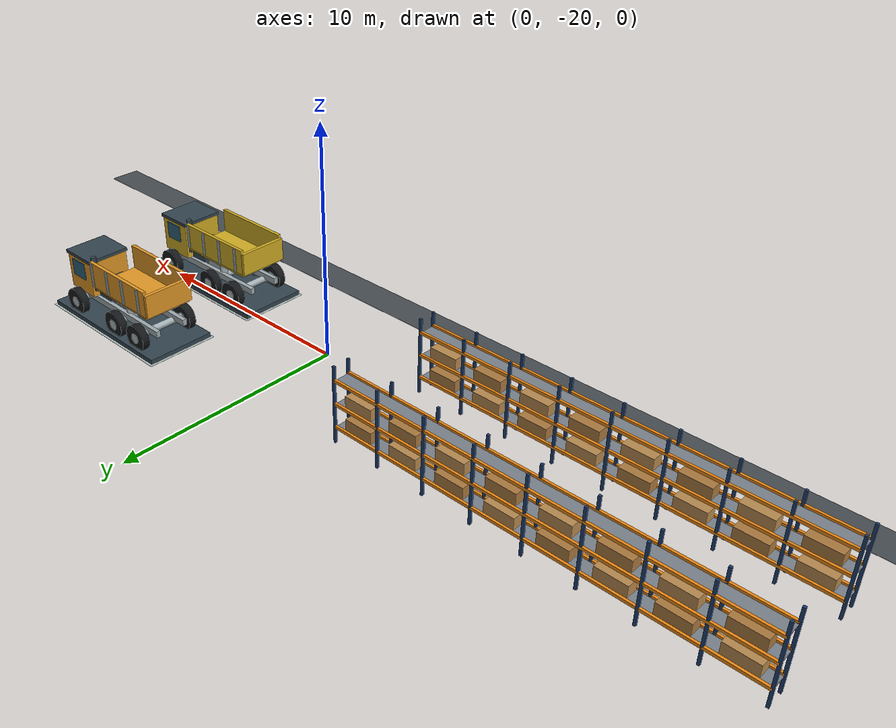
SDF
<sdf version="1.7">
 <world name="warehouse_layout_demo">
  <include><uri>model://sun</uri></include>
  <model name="south_perimeter_path">
   <static>true</static>
   <pose>0.0 -24.8 0.025 0 0 0</pose>
   <link name="marking">
    <visual name="visual">
     <geometry><box><size>90.0 1.5 0.012</size></box></geometry>
     <material><ambient>0.28 0.30 0.32 1</ambient><diffuse>0.28 0.30 0.32 1</diffuse></material>
    </visual>
   </link>
  </model>
  <model name="storage_rack_east_3_sw">
   <static>true</static>
   <pose>-13.0 -16.5 0 0 0 0</pose>
   <link name="rack">
    <collision name="rack_footprint">
     <pose>0 0 1.65 0 0 0</pose>
     <geometry><box><size>17.0 0.7 3.3</size></box></geometry>
    </collision>
    <visual name="upright_0_0">
     <pose>-8.5 -0.35 1.65 0 0 0</pose>
     <geometry><box><size>0.10 0.10 3.3</size></box></geometry>
     <material><ambient>0.12 0.24 0.42 1</ambient><diffuse>0.12 0.24 0.42 1</diffuse></material>
    </visual>
    <visual name="upright_0_1">
     <pose>-8.5 0.35 1.65 0 0 0</pose>
     <geometry><box><size>0.10 0.10 3.3</size></box></geometry>
     <material><ambient>0.12 0.24 0.42 1</ambient><diffuse>0.12 0.24 0.42 1</diffuse></material>
    </visual>
    <visual name="upright_1_0">
     <pose>-6.375 -0.35 1.65 0 0 0</pose>
     <geometry><box><size>0.10 0.10 3.3</size></box></geometry>
     <material><ambient>0.12 0.24 0.42 1</ambient><diffuse>0.12 0.24 0.42 1</diffuse></material>
    </visual>
    <visual name="upright_1_1">
     <pose>-6.375 0.35 1.65 0 0 0</pose>
     <geometry><box><size>0.10 0.10 3.3</size></box></geometry>
     <material><ambient>0.12 0.24 0.42 1</ambient><diffuse>0.12 0.24 0.42 1</diffuse></material>
    </visual>
    <visual name="upright_2_0">
     <pose>-4.25 -0.35 1.65 0 0 0</pose>
     <geometry><box><size>0.10 0.10 3.3</size></box></geometry>
     <material><ambient>0.12 0.24 0.42 1</ambient><diffuse>0.12 0.24 0.42 1</diffuse></material>
    </visual>
    <visual name="upright_2_1">
     <pose>-4.25 0.35 1.65 0 0 0</pose>
     <geometry><box><size>0.10 0.10 3.3</size></box></geometry>
     <material><ambient>0.12 0.24 0.42 1</ambient><diffuse>0.12 0.24 0.42 1</diffuse></material>
    </visual>
    <visual name="upright_3_0">
     <pose>-2.125 -0.35 1.65 0 0 0</pose>
     <geometry><box><size>0.10 0.10 3.3</size></box></geometry>
     <material><ambient>0.12 0.24 0.42 1</ambient><diffuse>0.12 0.24 0.42 1</diffuse></material>
    </visual>
    <visual name="upright_3_1">
     <pose>-2.125 0.35 1.65 0 0 0</pose>
     <geometry><box><size>0.10 0.10 3.3</size></box></geometry>
     <material><ambient>0.12 0.24 0.42 1</ambient><diffuse>0.12 0.24 0.42 1</diffuse></material>
    </visual>
    <visual name="upright_4_0">
     <pose>0.0 -0.35 1.65 0 0 0</pose>
     <geometry><box><size>0.10 0.10 3.3</size></box></geometry>
     <material><ambient>0.12 0.24 0.42 1</ambient><diffuse>0.12 0.24 0.42 1</diffuse></material>
    </visual>
    <visual name="upright_4_1">
     <pose>0.0 0.35 1.65 0 0 0</pose>
     <geometry><box><size>0.10 0.10 3.3</size></box></geometry>
     <material><ambient>0.12 0.24 0.42 1</ambient><diffuse>0.12 0.24 0.42 1</diffuse></material>
    </visual>
    <visual name="upright_5_0">
     <pose>2.125 -0.35 1.65 0 0 0</pose>
     <geometry><box><size>0.10 0.10 3.3</size></box></geometry>
     <material><ambient>0.12 0.24 0.42 1</ambient><diffuse>0.12 0.24 0.42 1</diffuse></material>
    </visual>
    <visual name="upright_5_1">
     <pose>2.125 0.35 1.65 0 0 0</pose>
     <geometry><box><size>0.10 0.10 3.3</size></box></geometry>
     <material><ambient>0.12 0.24 0.42 1</ambient><diffuse>0.12 0.24 0.42 1</diffuse></material>
    </visual>
    <visual name="upright_6_0">
     <pose>4.25 -0.35 1.65 0 0 0</pose>
     <geometry><box><size>0.10 0.10 3.3</size></box></geometry>
     <material><ambient>0.12 0.24 0.42 1</ambient><diffuse>0.12 0.24 0.42 1</diffuse></material>
    </visual>
    <visual name="upright_6_1">
     <pose>4.25 0.35 1.65 0 0 0</pose>
     <geometry><box><size>0.10 0.10 3.3</size></box></geometry>
     <material><ambient>0.12 0.24 0.42 1</ambient><diffuse>0.12 0.24 0.42 1</diffuse></material>
    </visual>
    <visual name="upright_7_0">
     <pose>6.375 -0.35 1.65 0 0 0</pose>
     <geometry><box><size>0.10 0.10 3.3</size></box></geometry>
     <material><ambient>0.12 0.24 0.42 1</ambient><diffuse>0.12 0.24 0.42 1</diffuse></material>
    </visual>
    <visual name="upright_7_1">
     <pose>6.375 0.35 1.65 0 0 0</pose>
     <geometry><box><size>0.10 0.10 3.3</size></box></geometry>
     <material><ambient>0.12 0.24 0.42 1</ambient><diffuse>0.12 0.24 0.42 1</diffuse></material>
    </visual>
    <visual name="upright_8_0">
     <pose>8.5 -0.35 1.65 0 0 0</pose>
     <geometry><box><size>0.10 0.10 3.3</size></box></geometry>
     <material><ambient>0.12 0.24 0.42 1</ambient><diffuse>0.12 0.24 0.42 1</diffuse></material>
    </visual>
    <visual name="upright_8_1">
     <pose>8.5 0.35 1.65 0 0 0</pose>
     <geometry><box><size>0.10 0.10 3.3</size></box></geometry>
     <material><ambient>0.12 0.24 0.42 1</ambient><diffuse>0.12 0.24 0.42 1</diffuse></material>
    </visual>
    <visual name="deck_0">
     <pose>0 0 0.65 0 0 0</pose>
     <geometry><box><size>17.0 0.7 0.06</size></box></geometry>
     <material><ambient>0.48 0.51 0.55 1</ambient><diffuse>0.48 0.51 0.55 1</diffuse></material>
    </visual>
    <visual name="beam_0_0">
     <pose>0 -0.35 0.71 0 0 0</pose>
     <geometry><box><size>17.0 0.10 0.12</size></box></geometry>
     <material><ambient>0.95 0.55 0.08 1</ambient><diffuse>0.95 0.55 0.08 1</diffuse></material>
    </visual>
    <visual name="beam_0_1">
     <pose>0 0.35 0.71 0 0 0</pose>
     <geometry><box><size>17.0 0.10 0.12</size></box></geometry>
     <material><ambient>0.95 0.55 0.08 1</ambient><diffuse>0.95 0.55 0.08 1</diffuse></material>
    </visual>
    <visual name="deck_1">
     <pose>0 0 1.65 0 0 0</pose>
     <geometry><box><size>17.0 0.7 0.06</size></box></geometry>
     <material><ambient>0.48 0.51 0.55 1</ambient><diffuse>0.48 0.51 0.55 1</diffuse></material>
    </visual>
    <visual name="beam_1_0">
     <pose>0 -0.35 1.71 0 0 0</pose>
     <geometry><box><size>17.0 0.10 0.12</size></box></geometry>
     <material><ambient>0.95 0.55 0.08 1</ambient><diffuse>0.95 0.55 0.08 1</diffuse></material>
    </visual>
    <visual name="beam_1_1">
     <pose>0 0.35 1.71 0 0 0</pose>
     <geometry><box><size>17.0 0.10 0.12</size></box></geometry>
     <material><ambient>0.95 0.55 0.08 1</ambient><diffuse>0.95 0.55 0.08 1</diffuse></material>
    </visual>
    <visual name="deck_2">
     <pose>0 0 2.65 0 0 0</pose>
     <geometry><box><size>17.0 0.7 0.06</size></box></geometry>
     <material><ambient>0.48 0.51 0.55 1</ambient><diffuse>0.48 0.51 0.55 1</diffuse></material>
    </visual>
    <visual name="beam_2_0">
     <pose>0 -0.35 2.71 0 0 0</pose>
     <geometry><box><size>17.0 0.10 0.12</size></box></geometry>
     <material><ambient>0.95 0.55 0.08 1</ambient><diffuse>0.95 0.55 0.08 1</diffuse></material>
    </visual>
    <visual name="beam_2_1">
     <pose>0 0.35 2.71 0 0 0</pose>
     <geometry><box><size>17.0 0.10 0.12</size></box></geometry>
     <material><ambient>0.95 0.55 0.08 1</ambient><diffuse>0.95 0.55 0.08 1</diffuse></material>
    </visual>
    <visual name="load_0_0">
     <pose>-7.4375 0 0.95 0 0 0</pose>
     <geometry><box><size>1.25 0.504 0.48</size></box></geometry>
     <material><ambient>0.72 0.54 0.31 1</ambient><diffuse>0.72 0.54 0.31 1</diffuse></material>
    </visual>
    <visual name="load_0_1">
     <pose>-7.4375 0 1.95 0 0 0</pose>
     <geometry><box><size>1.25 0.504 0.48</size></box></geometry>
     <material><ambient>0.67 0.48 0.25 1</ambient><diffuse>0.67 0.48 0.25 1</diffuse></material>
    </visual>
    <visual name="load_1_0">
     <pose>-5.3125 0 0.95 0 0 0</pose>
     <geometry><box><size>1.25 0.504 0.48</size></box></geometry>
     <material><ambient>0.67 0.48 0.25 1</ambient><diffuse>0.67 0.48 0.25 1</diffuse></material>
    </visual>
    <visual name="load_1_1">
     <pose>-5.3125 0 1.95 0 0 0</pose>
     <geometry><box><size>1.25 0.504 0.48</size></box></geometry>
     <material><ambient>0.72 0.54 0.31 1</ambient><diffuse>0.72 0.54 0.31 1</diffuse></material>
    </visual>
    <visual name="load_2_0">
     <pose>-3.1875 0 0.95 0 0 0</pose>
     <geometry><box><size>1.25 0.504 0.48</size></box></geometry>
     <material><ambient>0.72 0.54 0.31 1</ambient><diffuse>0.72 0.54 0.31 1</diffuse></material>
    </visual>
    <visual name="load_2_1">
     <pose>-3.1875 0 1.95 0 0 0</pose>
     <geometry><box><size>1.25 0.504 0.48</size></box></geometry>
     <material><ambient>0.67 0.48 0.25 1</ambient><diffuse>0.67 0.48 0.25 1</diffuse></material>
    </visual>
    <visual name="load_3_0">
     <pose>-1.0625 0 0.95 0 0 0</pose>
     <geometry><box><size>1.25 0.504 0.48</size></box></geometry>
     <material><ambient>0.67 0.48 0.25 1</ambient><diffuse>0.67 0.48 0.25 1</diffuse></material>
    </visual>
    <visual name="load_3_1">
     <pose>-1.0625 0 1.95 0 0 0</pose>
     <geometry><box><size>1.25 0.504 0.48</size></box></geometry>
     <material><ambient>0.72 0.54 0.31 1</ambient><diffuse>0.72 0.54 0.31 1</diffuse></material>
    </visual>
    <visual name="load_4_0">
     <pose>1.0625 0 0.95 0 0 0</pose>
     <geometry><box><size>1.25 0.504 0.48</size></box></geometry>
     <material><ambient>0.72 0.54 0.31 1</ambient><diffuse>0.72 0.54 0.31 1</diffuse></material>
    </visual>
    <visual name="load_4_1">
     <pose>1.0625 0 1.95 0 0 0</pose>
     <geometry><box><size>1.25 0.504 0.48</size></box></geometry>
     <material><ambient>0.67 0.48 0.25 1</ambient><diffuse>0.67 0.48 0.25 1</diffuse></material>
    </visual>
    <visual name="load_5_0">
     <pose>3.1875 0 0.95 0 0 0</pose>
     <geometry><box><size>1.25 0.504 0.48</size></box></geometry>
     <material><ambient>0.67 0.48 0.25 1</ambient><diffuse>0.67 0.48 0.25 1</diffuse></material>
    </visual>
    <visual name="load_5_1">
     <pose>3.1875 0 1.95 0 0 0</pose>
     <geometry><box><size>1.25 0.504 0.48</size></box></geometry>
     <material><ambient>0.72 0.54 0.31 1</ambient><diffuse>0.72 0.54 0.31 1</diffuse></material>
    </visual>
    <visual name="load_6_0">
     <pose>5.3125 0 0.95 0 0 0</pose>
     <geometry><box><size>1.25 0.504 0.48</size></box></geometry>
     <material><ambient>0.72 0.54 0.31 1</ambient><diffuse>0.72 0.54 0.31 1</diffuse></material>
    </visual>
    <visual name="load_6_1">
     <pose>5.3125 0 1.95 0 0 0</pose>
     <geometry><box><size>1.25 0.504 0.48</size></box></geometry>
     <material><ambient>0.67 0.48 0.25 1</ambient><diffuse>0.67 0.48 0.25 1</diffuse></material>
    </visual>
    <visual name="load_7_0">
     <pose>7.4375 0 0.95 0 0 0</pose>
     <geometry><box><size>1.25 0.504 0.48</size></box></geometry>
     <material><ambient>0.67 0.48 0.25 1</ambient><diffuse>0.67 0.48 0.25 1</diffuse></material>
    </visual>
    <visual name="load_7_1">
     <pose>7.4375 0 1.95 0 0 0</pose>
     <geometry><box><size>1.25 0.504 0.48</size></box></geometry>
     <material><ambient>0.72 0.54 0.31 1</ambient><diffuse>0.72 0.54 0.31 1</diffuse></material>
    </visual>
   </link>
  </model>
  <model name="storage_rack_east_4_sw">
   <static>true</static>
   <pose>-13.0 -21.0 0 0 0 0</pose>
   <link name="rack">
    <collision name="rack_footprint">
     <pose>0 0 1.65 0 0 0</pose>
     <geometry><box><size>17.0 0.7 3.3</size></box></geometry>
    </collision>
    <visual name="upright_0_0">
     <pose>-8.5 -0.35 1.65 0 0 0</pose>
     <geometry><box><size>0.10 0.10 3.3</size></box></geometry>
     <material><ambient>0.12 0.24 0.42 1</ambient><diffuse>0.12 0.24 0.42 1</diffuse></material>
    </visual>
    <visual name="upright_0_1">
     <pose>-8.5 0.35 1.65 0 0 0</pose>
     <geometry><box><size>0.10 0.10 3.3</size></box></geometry>
     <material><ambient>0.12 0.24 0.42 1</ambient><diffuse>0.12 0.24 0.42 1</diffuse></material>
    </visual>
    <visual name="upright_1_0">
     <pose>-6.375 -0.35 1.65 0 0 0</pose>
     <geometry><box><size>0.10 0.10 3.3</size></box></geometry>
     <material><ambient>0.12 0.24 0.42 1</ambient><diffuse>0.12 0.24 0.42 1</diffuse></material>
    </visual>
    <visual name="upright_1_1">
     <pose>-6.375 0.35 1.65 0 0 0</pose>
     <geometry><box><size>0.10 0.10 3.3</size></box></geometry>
     <material><ambient>0.12 0.24 0.42 1</ambient><diffuse>0.12 0.24 0.42 1</diffuse></material>
    </visual>
    <visual name="upright_2_0">
     <pose>-4.25 -0.35 1.65 0 0 0</pose>
     <geometry><box><size>0.10 0.10 3.3</size></box></geometry>
     <material><ambient>0.12 0.24 0.42 1</ambient><diffuse>0.12 0.24 0.42 1</diffuse></material>
    </visual>
    <visual name="upright_2_1">
     <pose>-4.25 0.35 1.65 0 0 0</pose>
     <geometry><box><size>0.10 0.10 3.3</size></box></geometry>
     <material><ambient>0.12 0.24 0.42 1</ambient><diffuse>0.12 0.24 0.42 1</diffuse></material>
    </visual>
    <visual name="upright_3_0">
     <pose>-2.125 -0.35 1.65 0 0 0</pose>
     <geometry><box><size>0.10 0.10 3.3</size></box></geometry>
     <material><ambient>0.12 0.24 0.42 1</ambient><diffuse>0.12 0.24 0.42 1</diffuse></material>
    </visual>
    <visual name="upright_3_1">
     <pose>-2.125 0.35 1.65 0 0 0</pose>
     <geometry><box><size>0.10 0.10 3.3</size></box></geometry>
     <material><ambient>0.12 0.24 0.42 1</ambient><diffuse>0.12 0.24 0.42 1</diffuse></material>
    </visual>
    <visual name="upright_4_0">
     <pose>0.0 -0.35 1.65 0 0 0</pose>
     <geometry><box><size>0.10 0.10 3.3</size></box></geometry>
     <material><ambient>0.12 0.24 0.42 1</ambient><diffuse>0.12 0.24 0.42 1</diffuse></material>
    </visual>
    <visual name="upright_4_1">
     <pose>0.0 0.35 1.65 0 0 0</pose>
     <geometry><box><size>0.10 0.10 3.3</size></box></geometry>
     <material><ambient>0.12 0.24 0.42 1</ambient><diffuse>0.12 0.24 0.42 1</diffuse></material>
    </visual>
    <visual name="upright_5_0">
     <pose>2.125 -0.35 1.65 0 0 0</pose>
     <geometry><box><size>0.10 0.10 3.3</size></box></geometry>
     <material><ambient>0.12 0.24 0.42 1</ambient><diffuse>0.12 0.24 0.42 1</diffuse></material>
    </visual>
    <visual name="upright_5_1">
     <pose>2.125 0.35 1.65 0 0 0</pose>
     <geometry><box><size>0.10 0.10 3.3</size></box></geometry>
     <material><ambient>0.12 0.24 0.42 1</ambient><diffuse>0.12 0.24 0.42 1</diffuse></material>
    </visual>
    <visual name="upright_6_0">
     <pose>4.25 -0.35 1.65 0 0 0</pose>
     <geometry><box><size>0.10 0.10 3.3</size></box></geometry>
     <material><ambient>0.12 0.24 0.42 1</ambient><diffuse>0.12 0.24 0.42 1</diffuse></material>
    </visual>
    <visual name="upright_6_1">
     <pose>4.25 0.35 1.65 0 0 0</pose>
     <geometry><box><size>0.10 0.10 3.3</size></box></geometry>
     <material><ambient>0.12 0.24 0.42 1</ambient><diffuse>0.12 0.24 0.42 1</diffuse></material>
    </visual>
    <visual name="upright_7_0">
     <pose>6.375 -0.35 1.65 0 0 0</pose>
     <geometry><box><size>0.10 0.10 3.3</size></box></geometry>
     <material><ambient>0.12 0.24 0.42 1</ambient><diffuse>0.12 0.24 0.42 1</diffuse></material>
    </visual>
    <visual name="upright_7_1">
     <pose>6.375 0.35 1.65 0 0 0</pose>
     <geometry><box><size>0.10 0.10 3.3</size></box></geometry>
     <material><ambient>0.12 0.24 0.42 1</ambient><diffuse>0.12 0.24 0.42 1</diffuse></material>
    </visual>
    <visual name="upright_8_0">
     <pose>8.5 -0.35 1.65 0 0 0</pose>
     <geometry><box><size>0.10 0.10 3.3</size></box></geometry>
     <material><ambient>0.12 0.24 0.42 1</ambient><diffuse>0.12 0.24 0.42 1</diffuse></material>
    </visual>
    <visual name="upright_8_1">
     <pose>8.5 0.35 1.65 0 0 0</pose>
     <geometry><box><size>0.10 0.10 3.3</size></box></geometry>
     <material><ambient>0.12 0.24 0.42 1</ambient><diffuse>0.12 0.24 0.42 1</diffuse></material>
    </visual>
    <visual name="deck_0">
     <pose>0 0 0.65 0 0 0</pose>
     <geometry><box><size>17.0 0.7 0.06</size></box></geometry>
     <material><ambient>0.48 0.51 0.55 1</ambient><diffuse>0.48 0.51 0.55 1</diffuse></material>
    </visual>
    <visual name="beam_0_0">
     <pose>0 -0.35 0.71 0 0 0</pose>
     <geometry><box><size>17.0 0.10 0.12</size></box></geometry>
     <material><ambient>0.95 0.55 0.08 1</ambient><diffuse>0.95 0.55 0.08 1</diffuse></material>
    </visual>
    <visual name="beam_0_1">
     <pose>0 0.35 0.71 0 0 0</pose>
     <geometry><box><size>17.0 0.10 0.12</size></box></geometry>
     <material><ambient>0.95 0.55 0.08 1</ambient><diffuse>0.95 0.55 0.08 1</diffuse></material>
    </visual>
    <visual name="deck_1">
     <pose>0 0 1.65 0 0 0</pose>
     <geometry><box><size>17.0 0.7 0.06</size></box></geometry>
     <material><ambient>0.48 0.51 0.55 1</ambient><diffuse>0.48 0.51 0.55 1</diffuse></material>
    </visual>
    <visual name="beam_1_0">
     <pose>0 -0.35 1.71 0 0 0</pose>
     <geometry><box><size>17.0 0.10 0.12</size></box></geometry>
     <material><ambient>0.95 0.55 0.08 1</ambient><diffuse>0.95 0.55 0.08 1</diffuse></material>
    </visual>
    <visual name="beam_1_1">
     <pose>0 0.35 1.71 0 0 0</pose>
     <geometry><box><size>17.0 0.10 0.12</size></box></geometry>
     <material><ambient>0.95 0.55 0.08 1</ambient><diffuse>0.95 0.55 0.08 1</diffuse></material>
    </visual>
    <visual name="deck_2">
     <pose>0 0 2.65 0 0 0</pose>
     <geometry><box><size>17.0 0.7 0.06</size></box></geometry>
     <material><ambient>0.48 0.51 0.55 1</ambient><diffuse>0.48 0.51 0.55 1</diffuse></material>
    </visual>
    <visual name="beam_2_0">
     <pose>0 -0.35 2.71 0 0 0</pose>
     <geometry><box><size>17.0 0.10 0.12</size></box></geometry>
     <material><ambient>0.95 0.55 0.08 1</ambient><diffuse>0.95 0.55 0.08 1</diffuse></material>
    </visual>
    <visual name="beam_2_1">
     <pose>0 0.35 2.71 0 0 0</pose>
     <geometry><box><size>17.0 0.10 0.12</size></box></geometry>
     <material><ambient>0.95 0.55 0.08 1</ambient><diffuse>0.95 0.55 0.08 1</diffuse></material>
    </visual>
    <visual name="load_0_0">
     <pose>-7.4375 0 0.95 0 0 0</pose>
     <geometry><box><size>1.25 0.504 0.48</size></box></geometry>
     <material><ambient>0.72 0.54 0.31 1</ambient><diffuse>0.72 0.54 0.31 1</diffuse></material>
    </visual>
    <visual name="load_0_1">
     <pose>-7.4375 0 1.95 0 0 0</pose>
     <geometry><box><size>1.25 0.504 0.48</size></box></geometry>
     <material><ambient>0.67 0.48 0.25 1</ambient><diffuse>0.67 0.48 0.25 1</diffuse></material>
    </visual>
    <visual name="load_1_0">
     <pose>-5.3125 0 0.95 0 0 0</pose>
     <geometry><box><size>1.25 0.504 0.48</size></box></geometry>
     <material><ambient>0.67 0.48 0.25 1</ambient><diffuse>0.67 0.48 0.25 1</diffuse></material>
    </visual>
    <visual name="load_1_1">
     <pose>-5.3125 0 1.95 0 0 0</pose>
     <geometry><box><size>1.25 0.504 0.48</size></box></geometry>
     <material><ambient>0.72 0.54 0.31 1</ambient><diffuse>0.72 0.54 0.31 1</diffuse></material>
    </visual>
    <visual name="load_2_0">
     <pose>-3.1875 0 0.95 0 0 0</pose>
     <geometry><box><size>1.25 0.504 0.48</size></box></geometry>
     <material><ambient>0.72 0.54 0.31 1</ambient><diffuse>0.72 0.54 0.31 1</diffuse></material>
    </visual>
    <visual name="load_2_1">
     <pose>-3.1875 0 1.95 0 0 0</pose>
     <geometry><box><size>1.25 0.504 0.48</size></box></geometry>
     <material><ambient>0.67 0.48 0.25 1</ambient><diffuse>0.67 0.48 0.25 1</diffuse></material>
    </visual>
    <visual name="load_3_0">
     <pose>-1.0625 0 0.95 0 0 0</pose>
     <geometry><box><size>1.25 0.504 0.48</size></box></geometry>
     <material><ambient>0.67 0.48 0.25 1</ambient><diffuse>0.67 0.48 0.25 1</diffuse></material>
    </visual>
    <visual name="load_3_1">
     <pose>-1.0625 0 1.95 0 0 0</pose>
     <geometry><box><size>1.25 0.504 0.48</size></box></geometry>
     <material><ambient>0.72 0.54 0.31 1</ambient><diffuse>0.72 0.54 0.31 1</diffuse></material>
    </visual>
    <visual name="load_4_0">
     <pose>1.0625 0 0.95 0 0 0</pose>
     <geometry><box><size>1.25 0.504 0.48</size></box></geometry>
     <material><ambient>0.72 0.54 0.31 1</ambient><diffuse>0.72 0.54 0.31 1</diffuse></material>
    </visual>
    <visual name="load_4_1">
     <pose>1.0625 0 1.95 0 0 0</pose>
     <geometry><box><size>1.25 0.504 0.48</size></box></geometry>
     <material><ambient>0.67 0.48 0.25 1</ambient><diffuse>0.67 0.48 0.25 1</diffuse></material>
    </visual>
    <visual name="load_5_0">
     <pose>3.1875 0 0.95 0 0 0</pose>
     <geometry><box><size>1.25 0.504 0.48</size></box></geometry>
     <material><ambient>0.67 0.48 0.25 1</ambient><diffuse>0.67 0.48 0.25 1</diffuse></material>
    </visual>
    <visual name="load_5_1">
     <pose>3.1875 0 1.95 0 0 0</pose>
     <geometry><box><size>1.25 0.504 0.48</size></box></geometry>
     <material><ambient>0.72 0.54 0.31 1</ambient><diffuse>0.72 0.54 0.31 1</diffuse></material>
    </visual>
    <visual name="load_6_0">
     <pose>5.3125 0 0.95 0 0 0</pose>
     <geometry><box><size>1.25 0.504 0.48</size></box></geometry>
     <material><ambient>0.72 0.54 0.31 1</ambient><diffuse>0.72 0.54 0.31 1</diffuse></material>
    </visual>
    <visual name="load_6_1">
     <pose>5.3125 0 1.95 0 0 0</pose>
     <geometry><box><size>1.25 0.504 0.48</size></box></geometry>
     <material><ambient>0.67 0.48 0.25 1</ambient><diffuse>0.67 0.48 0.25 1</diffuse></material>
    </visual>
    <visual name="load_7_0">
     <pose>7.4375 0 0.95 0 0 0</pose>
     <geometry><box><size>1.25 0.504 0.48</size></box></geometry>
     <material><ambient>0.67 0.48 0.25 1</ambient><diffuse>0.67 0.48 0.25 1</diffuse></material>
    </visual>
    <visual name="load_7_1">
     <pose>7.4375 0 1.95 0 0 0</pose>
     <geometry><box><size>1.25 0.504 0.48</size></box></geometry>
     <material><ambient>0.72 0.54 0.31 1</ambient><diffuse>0.72 0.54 0.31 1</diffuse></material>
    </visual>
   </link>
  </model>
  <model name="vehicle_stage_4_line_1_se_pad">
   <static>true</static>
   <pose>8.0 -21.0 0.012 0 0 0</pose>
   <link name="marking">
    <visual name="visual">
     <geometry><box><size>7.2 3.2 0.012</size></box></geometry>
     <material><ambient>0.72 0.79 0.78 1</ambient><diffuse>0.72 0.79 0.78 1</diffuse></material>
    </visual>
   </link>
  </model>
  <model name="vehicle_stage_4_line_1_se">
   <static>true</static>
   <pose>8.0 -21.0 0 0 0 0</pose>
   <link name="fixture">
    <collision name="collision">
     <pose>0 0 1.9 0 0 0</pose>
     <geometry><box><size>7.0 3.0 3.8</size></box></geometry>
    </collision>
    <visual name="service_platform">
     <pose>0 0 0.11 0 0 0</pose>
     <geometry><box><size>7.0 3.0 0.22</size></box></geometry>
     <material><ambient>0.20 0.27 0.31 1</ambient><diffuse>0.20 0.27 0.31 1</diffuse></material>
    </visual>
    <visual name="chassis_rail_0">
     <pose>0 -0.66 0.85 0 0 0</pose>
     <geometry><box><size>5.9 0.19 0.28</size></box></geometry>
     <material><ambient>0.63 0.68 0.70 1</ambient><diffuse>0.63 0.68 0.70 1</diffuse></material>
    </visual>
    <visual name="haul_tire_0_0">
     <pose>-2.2 -1.18 0.63 1.57079632679 0 0</pose>
     <geometry><cylinder><radius>0.58</radius><length>0.32</length></cylinder></geometry>
     <material><ambient>0.08 0.09 0.10 1</ambient><diffuse>0.08 0.09 0.10 1</diffuse></material>
    </visual>
    <visual name="tire_hub_0_0">
     <pose>-2.2 -1.18 0.63 1.57079632679 0 0</pose>
     <geometry><cylinder><radius>0.23</radius><length>0.34</length></cylinder></geometry>
     <material><ambient>0.70 0.74 0.74 1</ambient><diffuse>0.70 0.74 0.74 1</diffuse></material>
    </visual>
    <visual name="haul_tire_0_1">
     <pose>-0.65 -1.18 0.63 1.57079632679 0 0</pose>
     <geometry><cylinder><radius>0.58</radius><length>0.32</length></cylinder></geometry>
     <material><ambient>0.08 0.09 0.10 1</ambient><diffuse>0.08 0.09 0.10 1</diffuse></material>
    </visual>
    <visual name="tire_hub_0_1">
     <pose>-0.65 -1.18 0.63 1.57079632679 0 0</pose>
     <geometry><cylinder><radius>0.23</radius><length>0.34</length></cylinder></geometry>
     <material><ambient>0.70 0.74 0.74 1</ambient><diffuse>0.70 0.74 0.74 1</diffuse></material>
    </visual>
    <visual name="haul_tire_0_2">
     <pose>2.15 -1.18 0.63 1.57079632679 0 0</pose>
     <geometry><cylinder><radius>0.58</radius><length>0.32</length></cylinder></geometry>
     <material><ambient>0.08 0.09 0.10 1</ambient><diffuse>0.08 0.09 0.10 1</diffuse></material>
    </visual>
    <visual name="tire_hub_0_2">
     <pose>2.15 -1.18 0.63 1.57079632679 0 0</pose>
     <geometry><cylinder><radius>0.23</radius><length>0.34</length></cylinder></geometry>
     <material><ambient>0.70 0.74 0.74 1</ambient><diffuse>0.70 0.74 0.74 1</diffuse></material>
    </visual>
    <visual name="chassis_rail_1">
     <pose>0 0.66 0.85 0 0 0</pose>
     <geometry><box><size>5.9 0.19 0.28</size></box></geometry>
     <material><ambient>0.63 0.68 0.70 1</ambient><diffuse>0.63 0.68 0.70 1</diffuse></material>
    </visual>
    <visual name="haul_tire_1_0">
     <pose>-2.2 1.18 0.63 1.57079632679 0 0</pose>
     <geometry><cylinder><radius>0.58</radius><length>0.32</length></cylinder></geometry>
     <material><ambient>0.08 0.09 0.10 1</ambient><diffuse>0.08 0.09 0.10 1</diffuse></material>
    </visual>
    <visual name="tire_hub_1_0">
     <pose>-2.2 1.18 0.63 1.57079632679 0 0</pose>
     <geometry><cylinder><radius>0.23</radius><length>0.34</length></cylinder></geometry>
     <material><ambient>0.70 0.74 0.74 1</ambient><diffuse>0.70 0.74 0.74 1</diffuse></material>
    </visual>
    <visual name="haul_tire_1_1">
     <pose>-0.65 1.18 0.63 1.57079632679 0 0</pose>
     <geometry><cylinder><radius>0.58</radius><length>0.32</length></cylinder></geometry>
     <material><ambient>0.08 0.09 0.10 1</ambient><diffuse>0.08 0.09 0.10 1</diffuse></material>
    </visual>
    <visual name="tire_hub_1_1">
     <pose>-0.65 1.18 0.63 1.57079632679 0 0</pose>
     <geometry><cylinder><radius>0.23</radius><length>0.34</length></cylinder></geometry>
     <material><ambient>0.70 0.74 0.74 1</ambient><diffuse>0.70 0.74 0.74 1</diffuse></material>
    </visual>
    <visual name="haul_tire_1_2">
     <pose>2.15 1.18 0.63 1.57079632679 0 0</pose>
     <geometry><cylinder><radius>0.58</radius><length>0.32</length></cylinder></geometry>
     <material><ambient>0.08 0.09 0.10 1</ambient><diffuse>0.08 0.09 0.10 1</diffuse></material>
    </visual>
    <visual name="tire_hub_1_2">
     <pose>2.15 1.18 0.63 1.57079632679 0 0</pose>
     <geometry><cylinder><radius>0.23</radius><length>0.34</length></cylinder></geometry>
     <material><ambient>0.70 0.74 0.74 1</ambient><diffuse>0.70 0.74 0.74 1</diffuse></material>
    </visual>
    <visual name="drive_axle_0">
     <pose>-2.2 0 0.68 1.57079632679 0 0</pose>
     <geometry><cylinder><radius>0.15</radius><length>2.38</length></cylinder></geometry>
     <material><ambient>0.63 0.68 0.70 1</ambient><diffuse>0.63 0.68 0.70 1</diffuse></material>
    </visual>
    <visual name="drive_axle_1">
     <pose>-0.65 0 0.68 1.57079632679 0 0</pose>
     <geometry><cylinder><radius>0.15</radius><length>2.38</length></cylinder></geometry>
     <material><ambient>0.63 0.68 0.70 1</ambient><diffuse>0.63 0.68 0.70 1</diffuse></material>
    </visual>
    <visual name="drive_axle_2">
     <pose>2.15 0 0.68 1.57079632679 0 0</pose>
     <geometry><cylinder><radius>0.15</radius><length>2.38</length></cylinder></geometry>
     <material><ambient>0.63 0.68 0.70 1</ambient><diffuse>0.63 0.68 0.70 1</diffuse></material>
    </visual>
    <visual name="diesel_engine">
     <pose>1.15 0 1.26 0 0 0</pose>
     <geometry><box><size>1.38 1.22 0.83</size></box></geometry>
     <material><ambient>0.20 0.27 0.31 1</ambient><diffuse>0.20 0.27 0.31 1</diffuse></material>
    </visual>
    <visual name="gearbox">
     <pose>0.08 0 1.12 0 0 0</pose>
     <geometry><box><size>0.82 0.76 0.6</size></box></geometry>
     <material><ambient>0.63 0.68 0.70 1</ambient><diffuse>0.63 0.68 0.70 1</diffuse></material>
    </visual>
    <visual name="radiator_fan">
     <pose>1.98 0 1.29 1.57079632679 0 0</pose>
     <geometry><cylinder><radius>0.41</radius><length>0.15</length></cylinder></geometry>
     <material><ambient>0.76 0.80 0.79 1</ambient><diffuse>0.76 0.80 0.79 1</diffuse></material>
    </visual>
    <visual name="operator_cab">
     <pose>2.08 0 1.82 0 0 0</pose>
     <geometry><box><size>1.6 1.83 1.62</size></box></geometry>
     <material><ambient>0.82 0.68 0.14 1</ambient><diffuse>0.82 0.68 0.14 1</diffuse></material>
    </visual>
    <visual name="cab_roof">
     <pose>2.08 0 2.66 0 0 0</pose>
     <geometry><box><size>1.72 1.91 0.14</size></box></geometry>
     <material><ambient>0.20 0.27 0.31 1</ambient><diffuse>0.20 0.27 0.31 1</diffuse></material>
    </visual>
    <visual name="windshield">
     <pose>2.91 0 2.03 0 0 0</pose>
     <geometry><box><size>0.045 1.48 0.91</size></box></geometry>
     <material><ambient>0.17 0.38 0.48 1</ambient><diffuse>0.17 0.38 0.48 1</diffuse></material>
    </visual>
    <visual name="exhaust_stack">
     <pose>1.14 0.76 2.15 0.0 0 0</pose>
     <geometry><cylinder><radius>0.12</radius><length>1.57</length></cylinder></geometry>
     <material><ambient>0.20 0.27 0.31 1</ambient><diffuse>0.20 0.27 0.31 1</diffuse></material>
    </visual>
    <visual name="cab_side_glass_0">
     <pose>2.11 -0.95 2.08 0 0 0</pose>
     <geometry><box><size>0.87 0.035 0.76</size></box></geometry>
     <material><ambient>0.17 0.38 0.48 1</ambient><diffuse>0.17 0.38 0.48 1</diffuse></material>
    </visual>
    <visual name="cab_side_glass_1">
     <pose>2.11 0.95 2.08 0 0 0</pose>
     <geometry><box><size>0.87 0.035 0.76</size></box></geometry>
     <material><ambient>0.17 0.38 0.48 1</ambient><diffuse>0.17 0.38 0.48 1</diffuse></material>
    </visual>
    <visual name="dump_bed_floor">
     <pose>-1.01 0 1.78 0 0 0</pose>
     <geometry><box><size>3.75 2.15 0.22</size></box></geometry>
     <material><ambient>0.82 0.68 0.14 1</ambient><diffuse>0.82 0.68 0.14 1</diffuse></material>
    </visual>
    <visual name="dump_bed_side_0">
     <pose>-1.01 -1.05 2.37 0 0 0</pose>
     <geometry><box><size>3.75 0.15 1.15</size></box></geometry>
     <material><ambient>0.82 0.68 0.14 1</ambient><diffuse>0.82 0.68 0.14 1</diffuse></material>
    </visual>
    <visual name="bed_rib_0_0">
     <pose>-2.46 -1.1235000000000002 2.37 0 0 0</pose>
     <geometry><box><size>0.13 0.08 1.1</size></box></geometry>
     <material><ambient>0.63 0.68 0.70 1</ambient><diffuse>0.63 0.68 0.70 1</diffuse></material>
    </visual>
    <visual name="bed_rib_0_1">
     <pose>-1.39 -1.1235000000000002 2.37 0 0 0</pose>
     <geometry><box><size>0.13 0.08 1.1</size></box></geometry>
     <material><ambient>0.63 0.68 0.70 1</ambient><diffuse>0.63 0.68 0.70 1</diffuse></material>
    </visual>
    <visual name="bed_rib_0_2">
     <pose>-0.32 -1.1235000000000002 2.37 0 0 0</pose>
     <geometry><box><size>0.13 0.08 1.1</size></box></geometry>
     <material><ambient>0.63 0.68 0.70 1</ambient><diffuse>0.63 0.68 0.70 1</diffuse></material>
    </visual>
    <visual name="bed_rib_0_3">
     <pose>0.75 -1.1235000000000002 2.37 0 0 0</pose>
     <geometry><box><size>0.13 0.08 1.1</size></box></geometry>
     <material><ambient>0.63 0.68 0.70 1</ambient><diffuse>0.63 0.68 0.70 1</diffuse></material>
    </visual>
    <visual name="dump_bed_side_1">
     <pose>-1.01 1.05 2.37 0 0 0</pose>
     <geometry><box><size>3.75 0.15 1.15</size></box></geometry>
     <material><ambient>0.82 0.68 0.14 1</ambient><diffuse>0.82 0.68 0.14 1</diffuse></material>
    </visual>
    <visual name="bed_rib_1_0">
     <pose>-2.46 1.1235000000000002 2.37 0 0 0</pose>
     <geometry><box><size>0.13 0.08 1.1</size></box></geometry>
     <material><ambient>0.63 0.68 0.70 1</ambient><diffuse>0.63 0.68 0.70 1</diffuse></material>
    </visual>
    <visual name="bed_rib_1_1">
     <pose>-1.39 1.1235000000000002 2.37 0 0 0</pose>
     <geometry><box><size>0.13 0.08 1.1</size></box></geometry>
     <material><ambient>0.63 0.68 0.70 1</ambient><diffuse>0.63 0.68 0.70 1</diffuse></material>
    </visual>
    <visual name="bed_rib_1_2">
     <pose>-0.32 1.1235000000000002 2.37 0 0 0</pose>
     <geometry><box><size>0.13 0.08 1.1</size></box></geometry>
     <material><ambient>0.63 0.68 0.70 1</ambient><diffuse>0.63 0.68 0.70 1</diffuse></material>
    </visual>
    <visual name="bed_rib_1_3">
     <pose>0.75 1.1235000000000002 2.37 0 0 0</pose>
     <geometry><box><size>0.13 0.08 1.1</size></box></geometry>
     <material><ambient>0.63 0.68 0.70 1</ambient><diffuse>0.63 0.68 0.70 1</diffuse></material>
    </visual>
    <visual name="rear_gate">
     <pose>-2.93 0 2.29 0 0 0</pose>
     <geometry><box><size>0.15 2.2 1.0</size></box></geometry>
     <material><ambient>0.82 0.68 0.14 1</ambient><diffuse>0.82 0.68 0.14 1</diffuse></material>
    </visual>
    <visual name="hydraulic_lift_left">
     <pose>-0.78 -0.48 1.37 0.0 0 0</pose>
     <geometry><cylinder><radius>0.18</radius><length>1.0</length></cylinder></geometry>
     <material><ambient>0.63 0.68 0.70 1</ambient><diffuse>0.63 0.68 0.70 1</diffuse></material>
    </visual>
    <visual name="hydraulic_lift_right">
     <pose>-0.78 0.48 1.37 0.0 0 0</pose>
     <geometry><cylinder><radius>0.18</radius><length>1.0</length></cylinder></geometry>
     <material><ambient>0.63 0.68 0.70 1</ambient><diffuse>0.63 0.68 0.70 1</diffuse></material>
    </visual>
   </link>
  </model>
  <model name="vehicle_stage_4_line_2_se_pad">
   <static>true</static>
   <pose>8.0 -16.0 0.012 0 0 0</pose>
   <link name="marking">
    <visual name="visual">
     <geometry><box><size>7.2 3.2 0.012</size></box></geometry>
     <material><ambient>0.72 0.79 0.78 1</ambient><diffuse>0.72 0.79 0.78 1</diffuse></material>
    </visual>
   </link>
  </model>
  <model name="vehicle_stage_4_line_2_se">
   <static>true</static>
   <pose>8.0 -16.0 0 0 0 0</pose>
   <link name="fixture">
    <collision name="collision">
     <pose>0 0 1.9 0 0 0</pose>
     <geometry><box><size>7.0 3.0 3.8</size></box></geometry>
    </collision>
    <visual name="service_platform">
     <pose>0 0 0.11 0 0 0</pose>
     <geometry><box><size>7.0 3.0 0.22</size></box></geometry>
     <material><ambient>0.20 0.27 0.31 1</ambient><diffuse>0.20 0.27 0.31 1</diffuse></material>
    </visual>
    <visual name="chassis_rail_0">
     <pose>0 -0.66 0.85 0 0 0</pose>
     <geometry><box><size>5.9 0.19 0.28</size></box></geometry>
     <material><ambient>0.63 0.68 0.70 1</ambient><diffuse>0.63 0.68 0.70 1</diffuse></material>
    </visual>
    <visual name="haul_tire_0_0">
     <pose>-2.2 -1.18 0.63 1.57079632679 0 0</pose>
     <geometry><cylinder><radius>0.58</radius><length>0.32</length></cylinder></geometry>
     <material><ambient>0.08 0.09 0.10 1</ambient><diffuse>0.08 0.09 0.10 1</diffuse></material>
    </visual>
    <visual name="tire_hub_0_0">
     <pose>-2.2 -1.18 0.63 1.57079632679 0 0</pose>
     <geometry><cylinder><radius>0.23</radius><length>0.34</length></cylinder></geometry>
     <material><ambient>0.70 0.74 0.74 1</ambient><diffuse>0.70 0.74 0.74 1</diffuse></material>
    </visual>
    <visual name="haul_tire_0_1">
     <pose>-0.65 -1.18 0.63 1.57079632679 0 0</pose>
     <geometry><cylinder><radius>0.58</radius><length>0.32</length></cylinder></geometry>
     <material><ambient>0.08 0.09 0.10 1</ambient><diffuse>0.08 0.09 0.10 1</diffuse></material>
    </visual>
    <visual name="tire_hub_0_1">
     <pose>-0.65 -1.18 0.63 1.57079632679 0 0</pose>
     <geometry><cylinder><radius>0.23</radius><length>0.34</length></cylinder></geometry>
     <material><ambient>0.70 0.74 0.74 1</ambient><diffuse>0.70 0.74 0.74 1</diffuse></material>
    </visual>
    <visual name="haul_tire_0_2">
     <pose>2.15 -1.18 0.63 1.57079632679 0 0</pose>
     <geometry><cylinder><radius>0.58</radius><length>0.32</length></cylinder></geometry>
     <material><ambient>0.08 0.09 0.10 1</ambient><diffuse>0.08 0.09 0.10 1</diffuse></material>
    </visual>
    <visual name="tire_hub_0_2">
     <pose>2.15 -1.18 0.63 1.57079632679 0 0</pose>
     <geometry><cylinder><radius>0.23</radius><length>0.34</length></cylinder></geometry>
     <material><ambient>0.70 0.74 0.74 1</ambient><diffuse>0.70 0.74 0.74 1</diffuse></material>
    </visual>
    <visual name="chassis_rail_1">
     <pose>0 0.66 0.85 0 0 0</pose>
     <geometry><box><size>5.9 0.19 0.28</size></box></geometry>
     <material><ambient>0.63 0.68 0.70 1</ambient><diffuse>0.63 0.68 0.70 1</diffuse></material>
    </visual>
    <visual name="haul_tire_1_0">
     <pose>-2.2 1.18 0.63 1.57079632679 0 0</pose>
     <geometry><cylinder><radius>0.58</radius><length>0.32</length></cylinder></geometry>
     <material><ambient>0.08 0.09 0.10 1</ambient><diffuse>0.08 0.09 0.10 1</diffuse></material>
    </visual>
    <visual name="tire_hub_1_0">
     <pose>-2.2 1.18 0.63 1.57079632679 0 0</pose>
     <geometry><cylinder><radius>0.23</radius><length>0.34</length></cylinder></geometry>
     <material><ambient>0.70 0.74 0.74 1</ambient><diffuse>0.70 0.74 0.74 1</diffuse></material>
    </visual>
    <visual name="haul_tire_1_1">
     <pose>-0.65 1.18 0.63 1.57079632679 0 0</pose>
     <geometry><cylinder><radius>0.58</radius><length>0.32</length></cylinder></geometry>
     <material><ambient>0.08 0.09 0.10 1</ambient><diffuse>0.08 0.09 0.10 1</diffuse></material>
    </visual>
    <visual name="tire_hub_1_1">
     <pose>-0.65 1.18 0.63 1.57079632679 0 0</pose>
     <geometry><cylinder><radius>0.23</radius><length>0.34</length></cylinder></geometry>
     <material><ambient>0.70 0.74 0.74 1</ambient><diffuse>0.70 0.74 0.74 1</diffuse></material>
    </visual>
    <visual name="haul_tire_1_2">
     <pose>2.15 1.18 0.63 1.57079632679 0 0</pose>
     <geometry><cylinder><radius>0.58</radius><length>0.32</length></cylinder></geometry>
     <material><ambient>0.08 0.09 0.10 1</ambient><diffuse>0.08 0.09 0.10 1</diffuse></material>
    </visual>
    <visual name="tire_hub_1_2">
     <pose>2.15 1.18 0.63 1.57079632679 0 0</pose>
     <geometry><cylinder><radius>0.23</radius><length>0.34</length></cylinder></geometry>
     <material><ambient>0.70 0.74 0.74 1</ambient><diffuse>0.70 0.74 0.74 1</diffuse></material>
    </visual>
    <visual name="drive_axle_0">
     <pose>-2.2 0 0.68 1.57079632679 0 0</pose>
     <geometry><cylinder><radius>0.15</radius><length>2.38</length></cylinder></geometry>
     <material><ambient>0.63 0.68 0.70 1</ambient><diffuse>0.63 0.68 0.70 1</diffuse></material>
    </visual>
    <visual name="drive_axle_1">
     <pose>-0.65 0 0.68 1.57079632679 0 0</pose>
     <geometry><cylinder><radius>0.15</radius><length>2.38</length></cylinder></geometry>
     <material><ambient>0.63 0.68 0.70 1</ambient><diffuse>0.63 0.68 0.70 1</diffuse></material>
    </visual>
    <visual name="drive_axle_2">
     <pose>2.15 0 0.68 1.57079632679 0 0</pose>
     <geometry><cylinder><radius>0.15</radius><length>2.38</length></cylinder></geometry>
     <material><ambient>0.63 0.68 0.70 1</ambient><diffuse>0.63 0.68 0.70 1</diffuse></material>
    </visual>
    <visual name="diesel_engine">
     <pose>1.15 0 1.26 0 0 0</pose>
     <geometry><box><size>1.38 1.22 0.83</size></box></geometry>
     <material><ambient>0.20 0.27 0.31 1</ambient><diffuse>0.20 0.27 0.31 1</diffuse></material>
    </visual>
    <visual name="gearbox">
     <pose>0.08 0 1.12 0 0 0</pose>
     <geometry><box><size>0.82 0.76 0.6</size></box></geometry>
     <material><ambient>0.63 0.68 0.70 1</ambient><diffuse>0.63 0.68 0.70 1</diffuse></material>
    </visual>
    <visual name="radiator_fan">
     <pose>1.98 0 1.29 1.57079632679 0 0</pose>
     <geometry><cylinder><radius>0.41</radius><length>0.15</length></cylinder></geometry>
     <material><ambient>0.76 0.80 0.79 1</ambient><diffuse>0.76 0.80 0.79 1</diffuse></material>
    </visual>
    <visual name="operator_cab">
     <pose>2.08 0 1.82 0 0 0</pose>
     <geometry><box><size>1.6 1.83 1.62</size></box></geometry>
     <material><ambient>0.89 0.60 0.15 1</ambient><diffuse>0.89 0.60 0.15 1</diffuse></material>
    </visual>
    <visual name="cab_roof">
     <pose>2.08 0 2.66 0 0 0</pose>
     <geometry><box><size>1.72 1.91 0.14</size></box></geometry>
     <material><ambient>0.20 0.27 0.31 1</ambient><diffuse>0.20 0.27 0.31 1</diffuse></material>
    </visual>
    <visual name="windshield">
     <pose>2.91 0 2.03 0 0 0</pose>
     <geometry><box><size>0.045 1.48 0.91</size></box></geometry>
     <material><ambient>0.17 0.38 0.48 1</ambient><diffuse>0.17 0.38 0.48 1</diffuse></material>
    </visual>
    <visual name="exhaust_stack">
     <pose>1.14 0.76 2.15 0.0 0 0</pose>
     <geometry><cylinder><radius>0.12</radius><length>1.57</length></cylinder></geometry>
     <material><ambient>0.20 0.27 0.31 1</ambient><diffuse>0.20 0.27 0.31 1</diffuse></material>
    </visual>
    <visual name="cab_side_glass_0">
     <pose>2.11 -0.95 2.08 0 0 0</pose>
     <geometry><box><size>0.87 0.035 0.76</size></box></geometry>
     <material><ambient>0.17 0.38 0.48 1</ambient><diffuse>0.17 0.38 0.48 1</diffuse></material>
    </visual>
    <visual name="cab_side_glass_1">
     <pose>2.11 0.95 2.08 0 0 0</pose>
     <geometry><box><size>0.87 0.035 0.76</size></box></geometry>
     <material><ambient>0.17 0.38 0.48 1</ambient><diffuse>0.17 0.38 0.48 1</diffuse></material>
    </visual>
    <visual name="dump_bed_floor">
     <pose>-1.01 0 1.78 0 0 0</pose>
     <geometry><box><size>3.75 2.15 0.22</size></box></geometry>
     <material><ambient>0.89 0.60 0.15 1</ambient><diffuse>0.89 0.60 0.15 1</diffuse></material>
    </visual>
    <visual name="dump_bed_side_0">
     <pose>-1.01 -1.05 2.37 0 0 0</pose>
     <geometry><box><size>3.75 0.15 1.15</size></box></geometry>
     <material><ambient>0.89 0.60 0.15 1</ambient><diffuse>0.89 0.60 0.15 1</diffuse></material>
    </visual>
    <visual name="bed_rib_0_0">
     <pose>-2.46 -1.1235000000000002 2.37 0 0 0</pose>
     <geometry><box><size>0.13 0.08 1.1</size></box></geometry>
     <material><ambient>0.63 0.68 0.70 1</ambient><diffuse>0.63 0.68 0.70 1</diffuse></material>
    </visual>
    <visual name="bed_rib_0_1">
     <pose>-1.39 -1.1235000000000002 2.37 0 0 0</pose>
     <geometry><box><size>0.13 0.08 1.1</size></box></geometry>
     <material><ambient>0.63 0.68 0.70 1</ambient><diffuse>0.63 0.68 0.70 1</diffuse></material>
    </visual>
    <visual name="bed_rib_0_2">
     <pose>-0.32 -1.1235000000000002 2.37 0 0 0</pose>
     <geometry><box><size>0.13 0.08 1.1</size></box></geometry>
     <material><ambient>0.63 0.68 0.70 1</ambient><diffuse>0.63 0.68 0.70 1</diffuse></material>
    </visual>
    <visual name="bed_rib_0_3">
     <pose>0.75 -1.1235000000000002 2.37 0 0 0</pose>
     <geometry><box><size>0.13 0.08 1.1</size></box></geometry>
     <material><ambient>0.63 0.68 0.70 1</ambient><diffuse>0.63 0.68 0.70 1</diffuse></material>
    </visual>
    <visual name="dump_bed_side_1">
     <pose>-1.01 1.05 2.37 0 0 0</pose>
     <geometry><box><size>3.75 0.15 1.15</size></box></geometry>
     <material><ambient>0.89 0.60 0.15 1</ambient><diffuse>0.89 0.60 0.15 1</diffuse></material>
    </visual>
    <visual name="bed_rib_1_0">
     <pose>-2.46 1.1235000000000002 2.37 0 0 0</pose>
     <geometry><box><size>0.13 0.08 1.1</size></box></geometry>
     <material><ambient>0.63 0.68 0.70 1</ambient><diffuse>0.63 0.68 0.70 1</diffuse></material>
    </visual>
    <visual name="bed_rib_1_1">
     <pose>-1.39 1.1235000000000002 2.37 0 0 0</pose>
     <geometry><box><size>0.13 0.08 1.1</size></box></geometry>
     <material><ambient>0.63 0.68 0.70 1</ambient><diffuse>0.63 0.68 0.70 1</diffuse></material>
    </visual>
    <visual name="bed_rib_1_2">
     <pose>-0.32 1.1235000000000002 2.37 0 0 0</pose>
     <geometry><box><size>0.13 0.08 1.1</size></box></geometry>
     <material><ambient>0.63 0.68 0.70 1</ambient><diffuse>0.63 0.68 0.70 1</diffuse></material>
    </visual>
    <visual name="bed_rib_1_3">
     <pose>0.75 1.1235000000000002 2.37 0 0 0</pose>
     <geometry><box><size>0.13 0.08 1.1</size></box></geometry>
     <material><ambient>0.63 0.68 0.70 1</ambient><diffuse>0.63 0.68 0.70 1</diffuse></material>
    </visual>
    <visual name="rear_gate">
     <pose>-2.93 0 2.29 0 0 0</pose>
     <geometry><box><size>0.15 2.2 1.0</size></box></geometry>
     <material><ambient>0.89 0.60 0.15 1</ambient><diffuse>0.89 0.60 0.15 1</diffuse></material>
    </visual>
    <visual name="hydraulic_lift_left">
     <pose>-0.78 -0.48 1.37 0.0 0 0</pose>
     <geometry><cylinder><radius>0.18</radius><length>1.0</length></cylinder></geometry>
     <material><ambient>0.63 0.68 0.70 1</ambient><diffuse>0.63 0.68 0.70 1</diffuse></material>
    </visual>
    <visual name="hydraulic_lift_right">
     <pose>-0.78 0.48 1.37 0.0 0 0</pose>
     <geometry><cylinder><radius>0.18</radius><length>1.0</length></cylinder></geometry>
     <material><ambient>0.63 0.68 0.70 1</ambient><diffuse>0.63 0.68 0.70 1</diffuse></material>
    </visual>
   </link>
  </model>
 </world>
</sdf>
